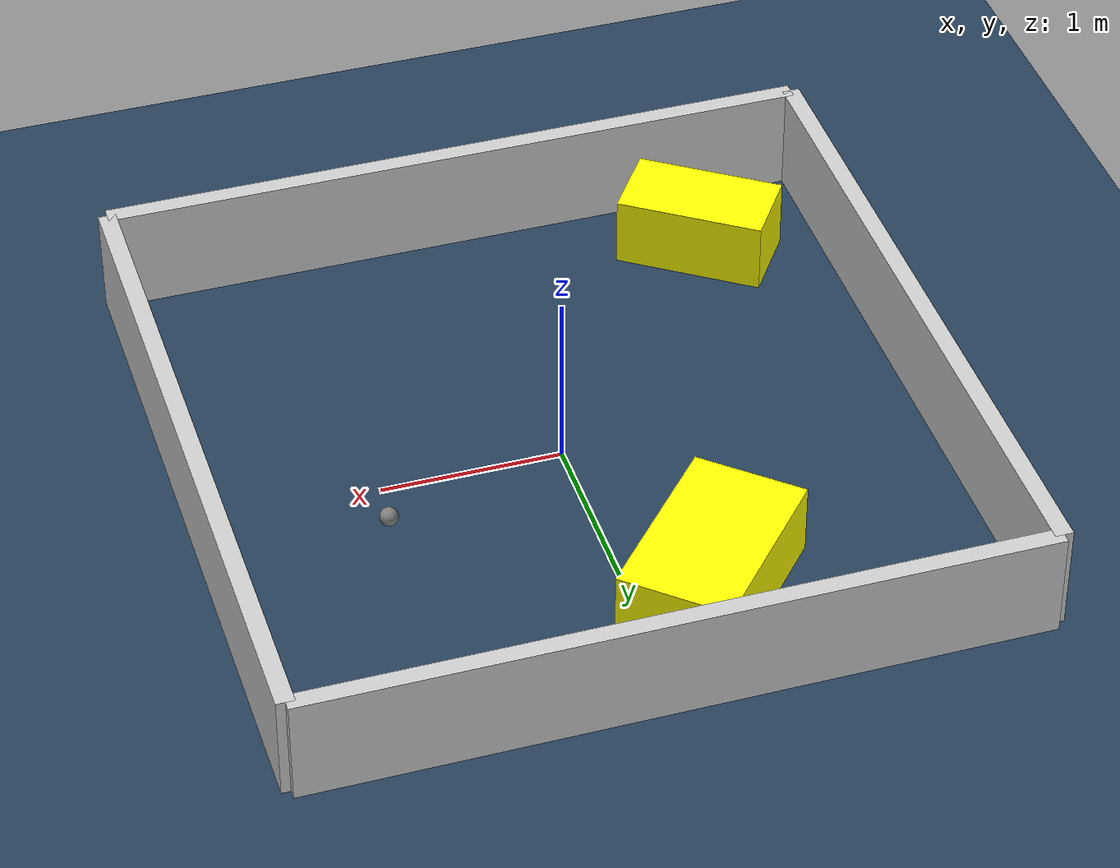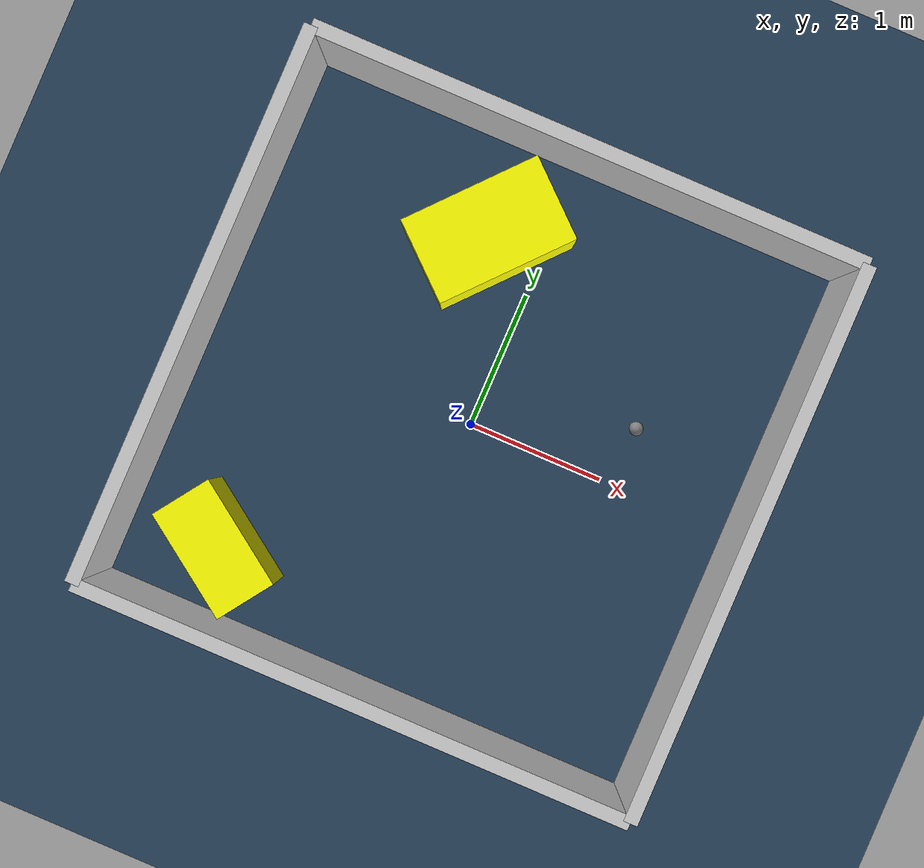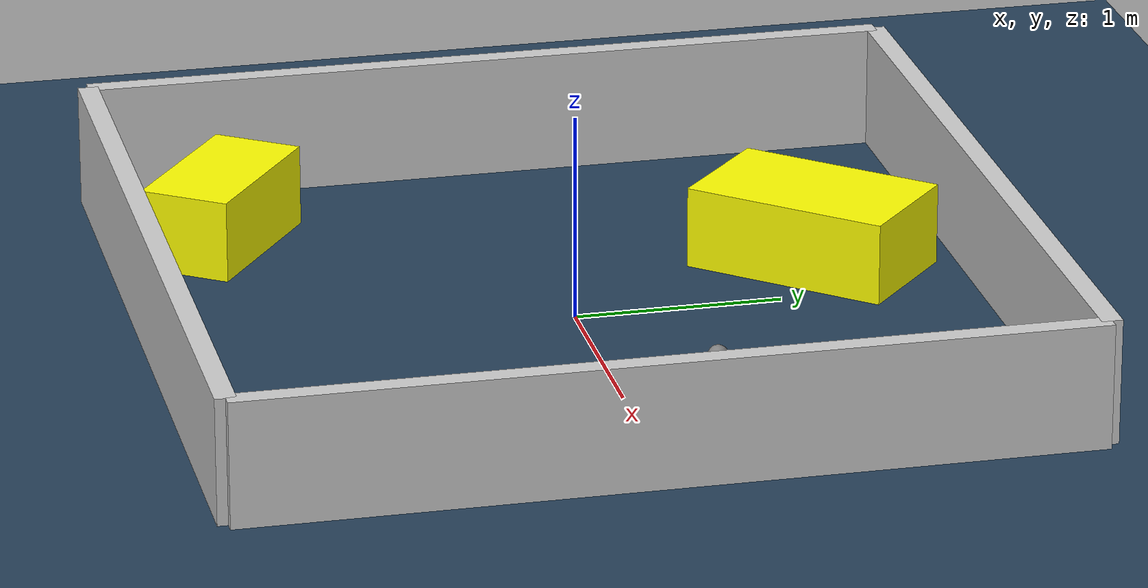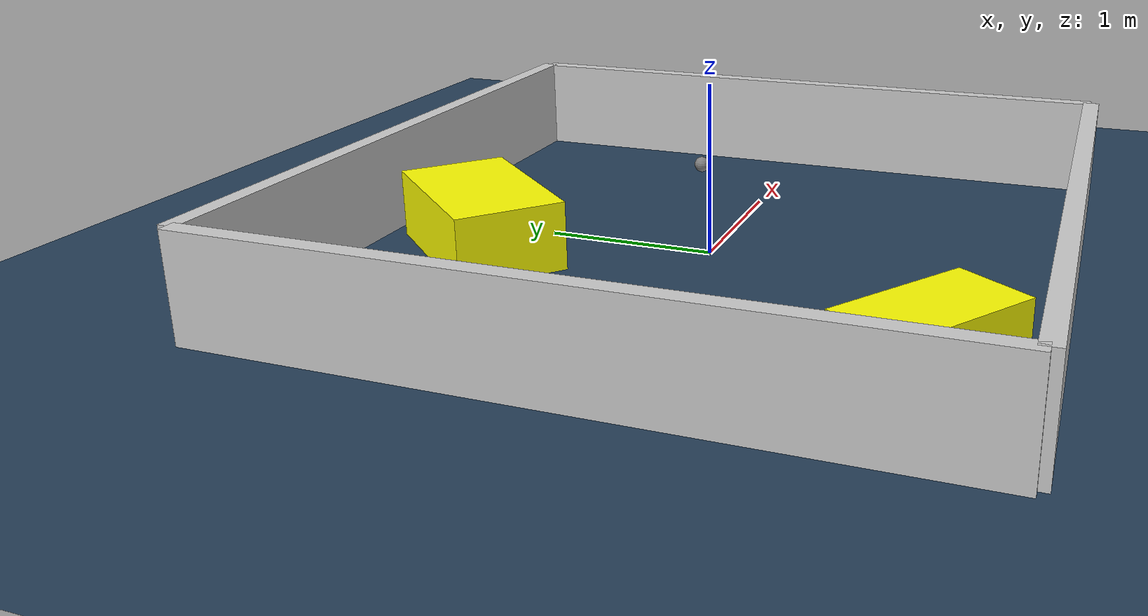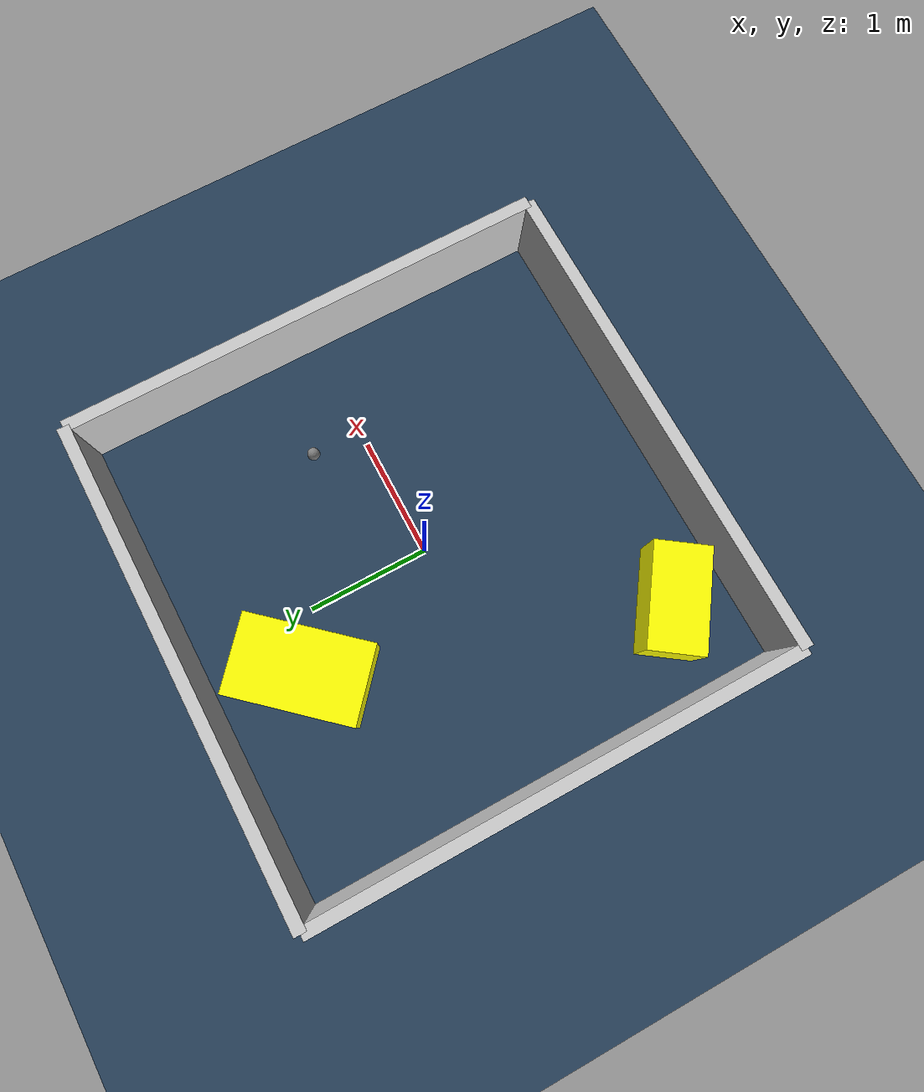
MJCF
<?xml version="1.0" ?>
<mujoco model="generated_environment">
  <option timestep="0.01" integrator="RK4" cone="elliptic"/>
  <default>
    <geom density="1"/>
  </default>
  <asset>
    <texture builtin="gradient" height="3072" rgb1="0.3 0.5 0.7" rgb2="0 0 0" type="skybox" width="512"/>
    <texture builtin="checker" height="300" mark="edge" markrgb="0.8 0.8 0.8" name="groundplane" rgb1="0.2 0.3 0.4" rgb2="0.1 0.2 0.3" type="2d" width="300"/>
    <material name="groundplane" reflectance="0.2" texrepeat="5 5" texture="groundplane" texuniform="true"/>
    <material name="robot" rgba="0.0 1.0 0.0 1"/>
  </asset>
  <worldbody>
    <light dir="0 0 -1" directional="true" pos="0 0 1.5"/>
    <geom condim="4" friction="1.0 0.005 0.001" material="groundplane" name="floor" size="0 0 0.05" type="plane"/>
    <body name="walls">
      <geom name="wall_1" condim="4" pos="-2.0 0.0 0.3" rgba="0.800000011920929 0.800000011920929 0.800000011920929 1.0" size="0.05 2.0 0.3" type="box"/>
      <geom name="wall_2" condim="4" pos="2.0 0.0 0.3" rgba="0.800000011920929 0.800000011920929 0.800000011920929 1.0" size="0.05 2.0 0.3" type="box"/>
      <geom name="wall_3" condim="4" pos="0.0 -2.0 0.3" rgba="0.800000011920929 0.800000011920929 0.800000011920929 1.0" size="2.0 0.05 0.3" type="box"/>
      <geom name="wall_4" condim="4" pos="0.0 2.0 0.3" rgba="0.800000011920929 0.800000011920929 0.800000011920929 1.0" size="2.0 0.05 0.3" type="box"/>
    </body>
    <body name="robot">
      <joint name="joint_x" type="slide" pos="0 0 0" axis="1 0 0"/>
      <joint name="joint_y" type="slide" pos="0 0 0" axis="0 1 0"/>
      <geom name="robot" type="sphere" pos="1.0686451194199442 0.4267333235784019 0.2" size="0.05" mass="5." friction="1.0 0.005 0.0001" condim="4"/>
      <site name="sensor_ball"/>
    </body>
    <body name="obstacle_1_movable">
      <geom name="obstacle_1_movable" condim="4" pos="-0.40756638775124165 1.2609538047093203 0.2" euler="0 0 48.38170286557603" friction="1.0 0.005 0.001" rgba="1 1 0 1" size="0.5134427481402724 0.313899554757327 0.2" type="box" mass="0.1"/>
      <joint type="free"/>
    </body>
    <body name="obstacle_2_movable">
      <geom name="obstacle_2_movable" condim="4" pos="-1.2711218073772192 -1.4661041205231642 0.2" euler="0 0 234.9680237399179" friction="1.0 0.005 0.001" rgba="1 1 0 1" size="0.22467543521550645 0.41864746121064667 0.2" type="box" mass="0.1"/>
      <joint type="free"/>
    </body>
  </worldbody>
  <actuator>
    <motor name="actuator_x" joint="joint_x" gear="1" ctrlrange="-1 1"/>
    <motor name="actuator_y" joint="joint_y" gear="1" ctrlrange="-1 1"/>
  </actuator>
</mujoco>
